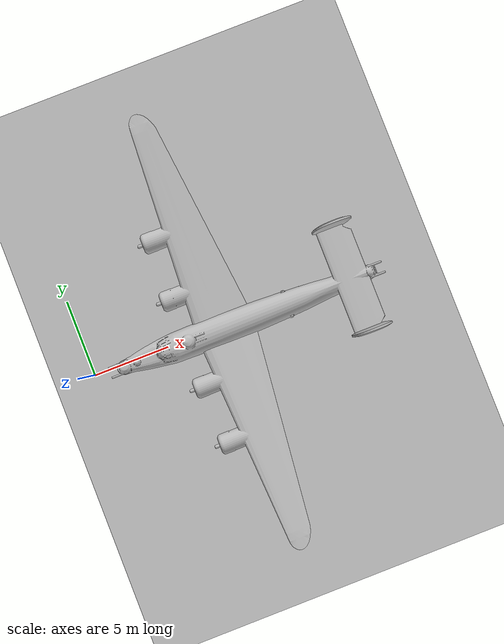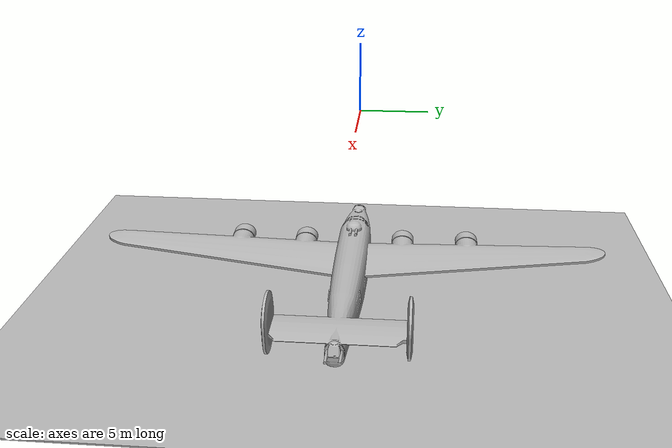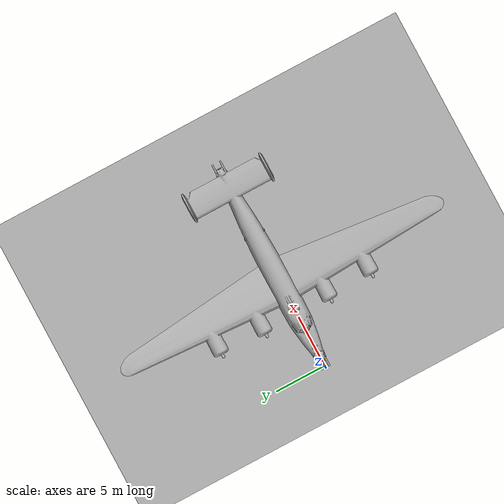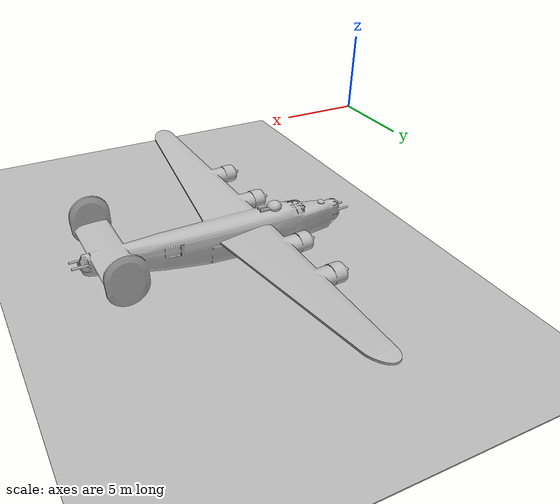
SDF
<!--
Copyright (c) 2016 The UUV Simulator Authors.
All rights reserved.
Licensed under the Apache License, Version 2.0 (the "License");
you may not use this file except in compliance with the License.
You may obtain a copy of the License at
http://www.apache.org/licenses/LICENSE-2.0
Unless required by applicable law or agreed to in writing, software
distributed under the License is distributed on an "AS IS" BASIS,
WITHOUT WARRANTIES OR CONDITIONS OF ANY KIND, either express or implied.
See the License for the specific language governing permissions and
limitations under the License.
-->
<?xml version="1.0" ?>
<sdf version="1.5">
  <world name="RFAL_land">
    <physics name="default_physics" default="true" type="ode">
      <max_step_size>0.002</max_step_size>
      <real_time_factor>1</real_time_factor>
      <real_time_update_rate>500</real_time_update_rate>
      <ode>
        <solver>
          <type>quick</type>
          <iters>50</iters>
          <sor>0.5</sor>
        </solver>
      </ode>
    </physics>
    <scene>
      <ambient>0.01 0.01 0.01 1.0</ambient>
    </scene>

    <!-- Origin placed somewhere in the middle of the North Sea  -->
    <spherical_coordinates>
      <latitude_deg>56.71897669633431</latitude_deg>
      <longitude_deg>3.515625</longitude_deg>
    </spherical_coordinates>

    <!-- Global light source -->
    <include>
      <uri>model://sun</uri>
    </include>

    <!-- Bounding box with sea surface -->
    <include>
      <uri>model://plane_crash</uri>
      <pose>0 0 0 0 0 0</pose>
    </include>

    <plugin name="underwater_current_plugin" filename="libuuv_underwater_current_ros_plugin.so">
      <namespace>hydrodynamics</namespace>
      <constant_current>
        <topic>current_velocity</topic>
        <velocity>
          <mean>0</mean>
          <min>0</min>
          <max>5</max>
          <mu>0.0</mu>
          <noiseAmp>0.0</noiseAmp>
        </velocity>

        <horizontal_angle>
          <mean>0</mean>
          <min>-3.141592653589793238</min>
          <max>3.141592653589793238</max>
          <mu>0.0</mu>
          <noiseAmp>0.0</noiseAmp>
        </horizontal_angle>

        <vertical_angle>
          <mean>0</mean>
          <min>-3.141592653589793238</min>
          <max>3.141592653589793238</max>
          <mu>0.0</mu>
          <noiseAmp>0.0</noiseAmp>
        </vertical_angle>
      </constant_current>
    </plugin>

    <plugin name="sc_interface" filename="libuuv_sc_ros_interface_plugin.so"/>

  </world>
</sdf>

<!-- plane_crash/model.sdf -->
<sdf version="1.5">

  <model name="plane_crash">
    <static>true</static>
    <link name="link">
      <visual name="ground">
        <cast_shadows>false</cast_shadows>
        <pose>0 0 -10 0 0 0</pose>
        <geometry>
          <box>
            <size>100 100 .1</size>
          </box>
        </geometry>
        <material>
          <script>
            <uri>file://Media/materials/scripts/sand.material</uri>
            <name>UUVSimulator/SandAndStones</name>
          </script>
        </material>
      </visual>

      <collision name="ground">
        <pose>0 0 -10 0 0 0</pose>
        <geometry>
          <box>
            <size>100 100 .1</size>
          </box>
        </geometry>
      </collision>

      <visual name="plane">
          <cast_shadows>false</cast_shadows>
          <pose>0 0 -8 0 0 0</pose>
          <geometry>
              <mesh><uri>model://plane_crash/meshes/B24.stl</uri><scale>.1 .1 .1 </scale></mesh>
          </geometry>
      </visual>

      <collision name="plane">
          <pose>0 0 -8 0 0 0</pose>
          <geometry>
              <mesh><uri>model://plane_crash/meshes/B24.stl</uri><scale> .1 .1 .1 </scale></mesh>
          </geometry>
      </collision>

    </link>
  </model>
</sdf>
